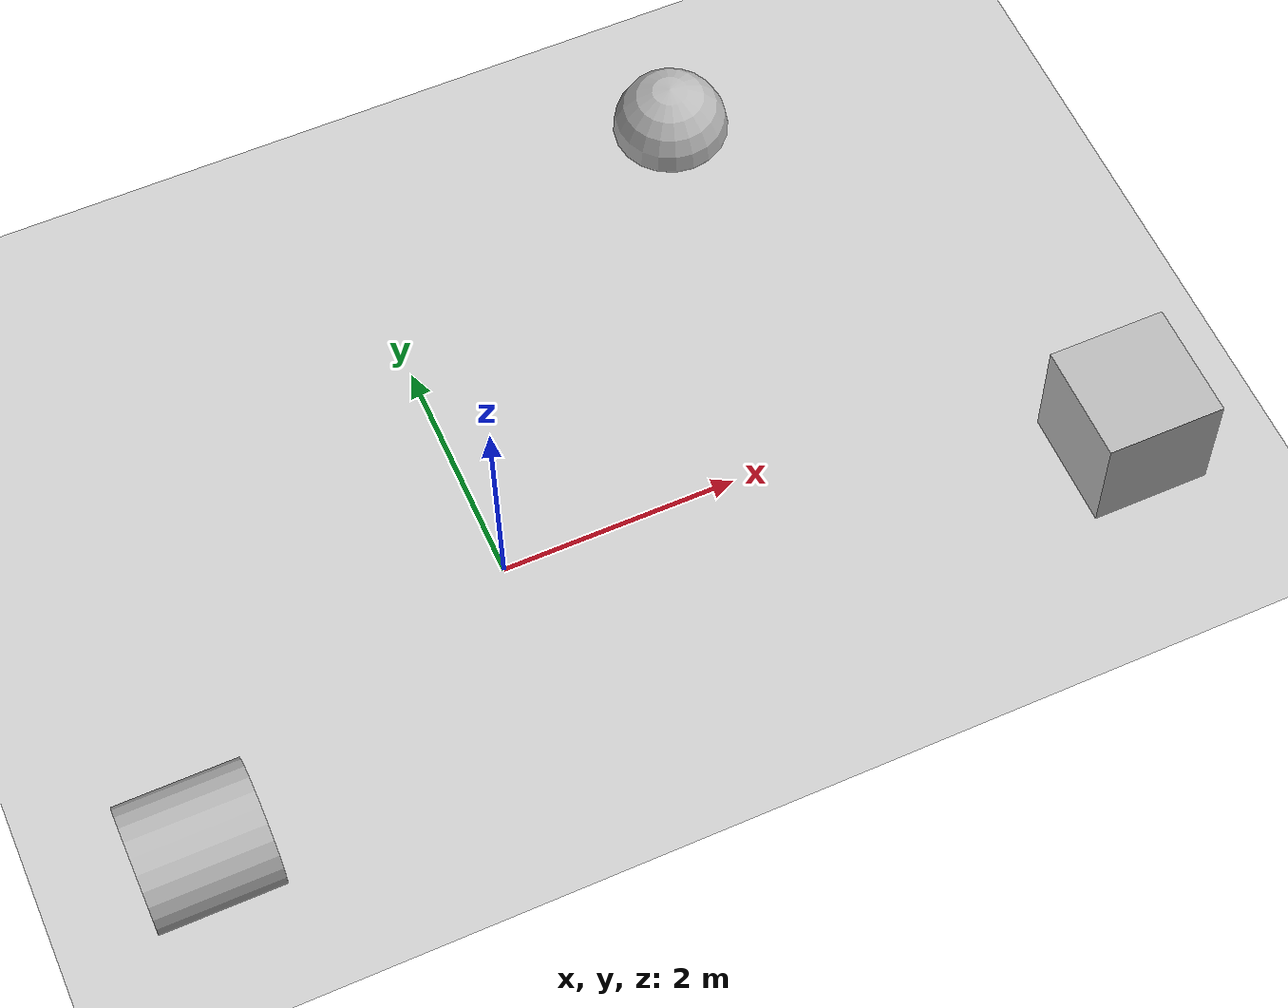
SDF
<?xml version="1.0" ?>
<sdf version="1.5">
  <world name="default">
    <include>
      <uri>model://ground_plane</uri>
    </include>
    <include>
      <uri>model://sun</uri>
    </include>
    <model name="box">
      <pose>5 -1 0.5 0 0 0</pose>
      <link name="link">
        <collision name="collision">
          <geometry>
            <box>
              <size>1 1 1</size>
            </box>
          </geometry>
        </collision>
        <visual name="visual">
          <geometry>
            <box>
              <size>1 1 1</size>
            </box>
          </geometry>
          <material>
            <script>Gazebo/WoodPallet</script>
          </material>
        </visual>
      </link>
    </model>
    <model name="sphere">
      <pose>3 3.5 0 0 0 0</pose>
      <link name="link">
        <collision name="collision">
          <geometry>
            <sphere>
              <radius>0.5</radius>
            </sphere>
          </geometry>
        </collision>
        <visual name="visual">
          <geometry>
            <sphere>
              <radius>0.5</radius>
            </sphere>
          </geometry>
          <material>
            <script>Gazebo/WoodPallet</script>
          </material>
        </visual>
      </link>
    </model>
    <model name="cylinder">
      <pose>-3 -1.5 0.5 0 1.5707 0</pose>
      <link name="link">
        <collision name="collision">
          <geometry>
            <cylinder>
              <radius>0.5</radius>
              <length>1.0</length>
            </cylinder>
          </geometry>
        </collision>
        <visual name="visual">
          <geometry>
            <cylinder>
              <radius>0.5</radius>
              <length>1.0</length>
            </cylinder>
          </geometry>
          <material>
            <script>Gazebo/WoodPallet</script>
          </material>
        </visual>
      </link>
    </model>
  </world>
</sdf>
